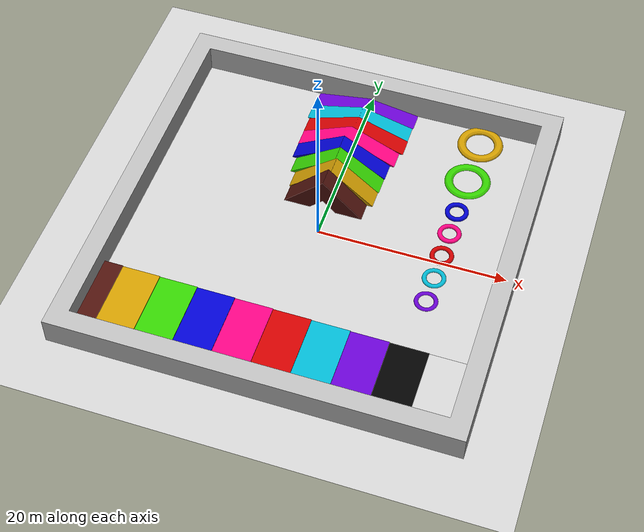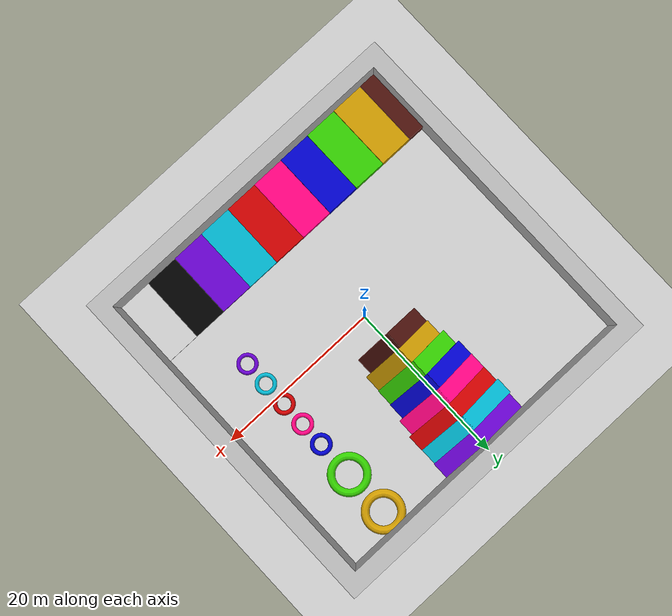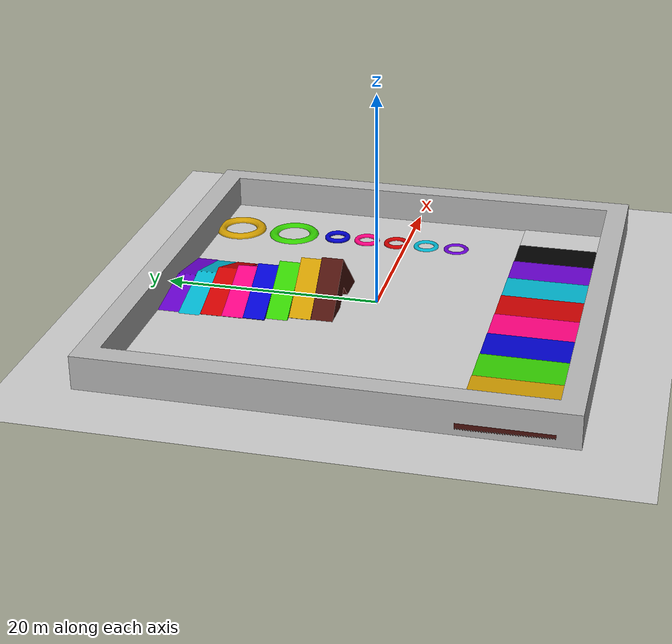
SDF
<sdf version="1.6">
 <world name="default">
  <light name="sun" type="directional">
   <pose>0 0 10 0 -0 0</pose>
   <diffuse>0.8 0.8 0.8 1</diffuse>
   <specular>0.1 0.1 0.1 1</specular>
   <attenuation>
    <range>1000</range>
    <constant>0.9</constant>
    <linear>0.01</linear>
    <quadratic>0.001</quadratic>
   </attenuation>
   <direction>-0.5 0.5 -1</direction>
  </light>
  <model name="ground_plane">
   <static>1</static>
   <link name="link">
    <collision name="collision">
     <geometry><plane><normal>0 0 1</normal><size>100 100</size></plane></geometry>
     <surface><friction><ode><mu>100</mu><mu2>50</mu2></ode></friction></surface>
    </collision>
    <visual name="visual">
     <cast_shadows>0</cast_shadows>
     <geometry><plane><normal>0 0 1</normal><size>100 100</size></plane></geometry>
     <material>
      <script><uri>file://media/materials/scripts/gazebo.material</uri><name>Gazebo/Grey</name></script>
     </material>
    </visual>
   </link>
  </model>
  <gravity>0 0 -9.8</gravity>
  <magnetic_field>6e-06 2.3e-05 -4.2e-05</magnetic_field>
  <atmosphere type="adiabatic"/>
  <physics name="default_physics" default="0" type="ode">
   <max_step_size>0.001</max_step_size>
   <real_time_factor>1</real_time_factor>
   <real_time_update_rate>1000</real_time_update_rate>
  </physics>
  <scene><ambient>0.4 0.4 0.4 1</ambient><background>0.7 0.7 0.7 1</background><shadows>1</shadows></scene>
  <spherical_coordinates>
   <surface_model>EARTH_WGS84</surface_model>
   <latitude_deg>0</latitude_deg>
   <longitude_deg>0</longitude_deg>
   <elevation>0</elevation>
   <heading_deg>0</heading_deg>
  </spherical_coordinates>
  <model name="roboskel_playground">
   <static>1</static>
   <link name="slope45">
    <collision name="collision">
     <pose>0 0 0.01 0 -0 0</pose>
     <geometry>
      <mesh><uri>model://roboskel_playground/meshes/slope45.dae</uri><scale>1 1 1</scale></mesh>
     </geometry>
     <surface>
      <friction><ode><mu>1</mu><mu2>1</mu2></ode></friction>
      <contact><ode><kp>1e+07</kp><kd>1</kd><min_depth>0.001</min_depth><max_vel>0.1</max_vel></ode></contact>
     </surface>
    </collision>
    <visual name="visual">
     <cast_shadows>0</cast_shadows>
     <pose>0 0 0.01 0 -0 0</pose>
     <geometry>
      <mesh><uri>model://roboskel_playground/meshes/slope45.dae</uri><scale>1 1 1</scale></mesh>
     </geometry>
     <material>
      <ambient>0.3 0.07 0.05 1</ambient>
      <diffuse>0.3 0.07 0.05 1</diffuse>
      <specular>0.1 0.1 0.1 1</specular>
      <emissive>0 0 0 0</emissive>
     </material>
    </visual>
   </link>
   <link name="slope40">
    <collision name="collision">
     <pose>0 0 0.01 0 -0 0</pose>
     <geometry>
      <mesh><uri>model://roboskel_playground/meshes/slope40.dae</uri><scale>1 1 1</scale></mesh>
     </geometry>
     <surface>
      <friction><ode><mu>1</mu><mu2>1</mu2></ode></friction>
      <contact><ode><kp>1e+07</kp><kd>1</kd><min_depth>0.001</min_depth><max_vel>0.1</max_vel></ode></contact>
     </surface>
    </collision>
    <visual name="visual">
     <cast_shadows>0</cast_shadows>
     <pose>0 0 0.01 0 -0 0</pose>
     <geometry>
      <mesh><uri>model://roboskel_playground/meshes/slope40.dae</uri><scale>1 1 1</scale></mesh>
     </geometry>
     <material>
      <ambient>0.8 0.6 0 1</ambient>
      <diffuse>0.8 0.6 0 1</diffuse>
      <specular>0.1 0.1 0.1 1</specular>
      <emissive>0 0 0 0</emissive>
     </material>
    </visual>
   </link>
   <link name="slope35">
    <collision name="collision">
     <pose>0 0 0.01 0 -0 0</pose>
     <geometry>
      <mesh><uri>model://roboskel_playground/meshes/slope35.dae</uri><scale>1 1 1</scale></mesh>
     </geometry>
     <surface>
      <friction><ode><mu>1</mu><mu2>1</mu2></ode></friction>
      <contact><ode><kp>1e+07</kp><kd>1</kd><min_depth>0.001</min_depth><max_vel>0.1</max_vel></ode></contact>
     </surface>
    </collision>
    <visual name="visual">
     <cast_shadows>0</cast_shadows>
     <pose>0 0 0.01 0 -0 0</pose>
     <geometry>
      <mesh><uri>model://roboskel_playground/meshes/slope35.dae</uri><scale>1 1 1</scale></mesh>
     </geometry>
     <material>
      <ambient>0.2 0.8 0 1</ambient>
      <diffuse>0.2 0.8 0 1</diffuse>
      <specular>0.1 0.1 0.1 1</specular>
      <emissive>0 0 0 0</emissive>
     </material>
    </visual>
   </link>
   <link name="slope30">
    <collision name="collision">
     <pose>0 0 0.01 0 -0 0</pose>
     <geometry>
      <mesh><uri>model://roboskel_playground/meshes/slope30.dae</uri><scale>1 1 1</scale></mesh>
     </geometry>
     <surface>
      <friction><ode><mu>1</mu><mu2>1</mu2></ode></friction>
      <contact><ode><kp>1e+07</kp><kd>1</kd><min_depth>0.001</min_depth><max_vel>0.1</max_vel></ode></contact>
     </surface>
    </collision>
    <visual name="visual">
     <cast_shadows>0</cast_shadows>
     <pose>0 0 0.01 0 -0 0</pose>
     <geometry>
      <mesh><uri>model://roboskel_playground/meshes/slope30.dae</uri><scale>1 1 1</scale></mesh>
     </geometry>
     <material>
      <ambient>0 0 0.8 1</ambient>
      <diffuse>0 0 0.8 1</diffuse>
      <specular>0.1 0.1 0.1 1</specular>
      <emissive>0 0 0 0</emissive>
     </material>
    </visual>
   </link>
   <link name="slope25">
    <collision name="collision">
     <pose>0 0 0.01 0 -0 0</pose>
     <geometry>
      <mesh><uri>model://roboskel_playground/meshes/slope25.dae</uri><scale>1 1 1</scale></mesh>
     </geometry>
     <surface>
      <friction><ode><mu>1</mu><mu2>1</mu2></ode></friction>
      <contact><ode><kp>1e+07</kp><kd>1</kd><min_depth>0.001</min_depth><max_vel>0.1</max_vel></ode></contact>
     </surface>
    </collision>
    <visual name="visual">
     <cast_shadows>0</cast_shadows>
     <pose>0 0 0.01 0 -0 0</pose>
     <geometry>
      <mesh><uri>model://roboskel_playground/meshes/slope25.dae</uri><scale>1 1 1</scale></mesh>
     </geometry>
     <material>
      <ambient>1 0 0.5 1</ambient>
      <diffuse>1 0 0.5 1</diffuse>
      <specular>0.1 0.1 0.1 1</specular>
      <emissive>0 0 0 0</emissive>
     </material>
    </visual>
   </link>
   <link name="slope20">
    <collision name="collision">
     <pose>0 0 0.01 0 -0 0</pose>
     <geometry>
      <mesh><uri>model://roboskel_playground/meshes/slope20.dae</uri><scale>1 1 1</scale></mesh>
     </geometry>
     <surface>
      <friction><ode><mu>1</mu><mu2>1</mu2></ode></friction>
      <contact><ode><kp>1e+07</kp><kd>1</kd><min_depth>0.001</min_depth><max_vel>0.1</max_vel></ode></contact>
     </surface>
    </collision>
    <visual name="visual">
     <cast_shadows>0</cast_shadows>
     <pose>0 0 0.01 0 -0 0</pose>
     <geometry>
      <mesh><uri>model://roboskel_playground/meshes/slope20.dae</uri><scale>1 1 1</scale></mesh>
     </geometry>
     <material>
      <ambient>0.8 0 0 1</ambient>
      <diffuse>0.8 0 0 1</diffuse>
      <specular>0.1 0.1 0.1 1</specular>
      <emissive>0 0 0 0</emissive>
     </material>
    </visual>
   </link>
   <link name="slope15">
    <collision name="collision">
     <pose>0 0 0.01 0 -0 0</pose>
     <geometry>
      <mesh><uri>model://roboskel_playground/meshes/slope15.dae</uri><scale>1 1 1</scale></mesh>
     </geometry>
     <surface>
      <friction><ode><mu>1</mu><mu2>1</mu2></ode></friction>
      <contact><ode><kp>1e+07</kp><kd>1</kd><min_depth>0.001</min_depth><max_vel>0.1</max_vel></ode></contact>
     </surface>
    </collision>
    <visual name="visual">
     <cast_shadows>0</cast_shadows>
     <pose>0 0 0.01 0 -0 0</pose>
     <geometry>
      <mesh><uri>model://roboskel_playground/meshes/slope15.dae</uri><scale>1 1 1</scale></mesh>
     </geometry>
     <material>
      <ambient>0 0.7 0.8 1</ambient>
      <diffuse>0 0.7 0.8 1</diffuse>
      <specular>0.1 0.1 0.1 1</specular>
      <emissive>0 0 0 0</emissive>
     </material>
    </visual>
   </link>
   <link name="slope10">
    <collision name="collision">
     <pose>0 0 0.01 0 -0 0</pose>
     <geometry>
      <mesh><uri>model://roboskel_playground/meshes/slope10.dae</uri><scale>1 1 1</scale></mesh>
     </geometry>
     <surface>
      <friction><ode><mu>1</mu><mu2>1</mu2></ode></friction>
      <contact><ode><kp>1e+07</kp><kd>1</kd><min_depth>0.001</min_depth><max_vel>0.1</max_vel></ode></contact>
     </surface>
    </collision>
    <visual name="visual">
     <cast_shadows>0</cast_shadows>
     <pose>0 0 0.01 0 -0 0</pose>
     <geometry>
      <mesh><uri>model://roboskel_playground/meshes/slope10.dae</uri><scale>1 1 1</scale></mesh>
     </geometry>
     <material>
      <ambient>0.4 0 0.8 1</ambient>
      <diffuse>0.4 0 0.8 1</diffuse>
      <specular>0.1 0.1 0.1 1</specular>
      <emissive>0 0 0 0</emissive>
     </material>
    </visual>
   </link>
   <link name="step10">
    <collision name="collision">
     <pose>0 0 0.01 0 -0 0</pose>
     <geometry><mesh><uri>model://roboskel_playground/meshes/step10.dae</uri><scale>1 1 1</scale></mesh></geometry>
     <surface>
      <friction><ode><mu>1</mu><mu2>1</mu2></ode></friction>
      <contact><ode><kp>1e+07</kp><kd>1</kd><min_depth>0.001</min_depth><max_vel>0.1</max_vel></ode></contact>
     </surface>
    </collision>
    <visual name="visual">
     <cast_shadows>0</cast_shadows>
     <pose>0 0 0.01 0 -0 0</pose>
     <geometry><mesh><uri>model://roboskel_playground/meshes/step10.dae</uri><scale>1 1 1</scale></mesh></geometry>
     <material>
      <ambient>0.3 0.07 0.05 1</ambient>
      <diffuse>0.3 0.07 0.05 1</diffuse>
      <specular>0.1 0.1 0.1 1</specular>
      <emissive>0 0 0 0</emissive>
     </material>
    </visual>
   </link>
   <link name="step9">
    <collision name="collision">
     <pose>0 0 0.01 0 -0 0</pose>
     <geometry><mesh><uri>model://roboskel_playground/meshes/step9.dae</uri><scale>1 1 1</scale></mesh></geometry>
     <surface>
      <friction><ode><mu>1</mu><mu2>1</mu2></ode></friction>
      <contact><ode><kp>1e+07</kp><kd>1</kd><min_depth>0.001</min_depth><max_vel>0.1</max_vel></ode></contact>
     </surface>
    </collision>
    <visual name="visual">
     <cast_shadows>0</cast_shadows>
     <pose>0 0 0.01 0 -0 0</pose>
     <geometry><mesh><uri>model://roboskel_playground/meshes/step9.dae</uri><scale>1 1 1</scale></mesh></geometry>
     <material>
      <ambient>0.8 0.6 0 1</ambient>
      <diffuse>0.8 0.6 0 1</diffuse>
      <specular>0.1 0.1 0.1 1</specular>
      <emissive>0 0 0 0</emissive>
     </material>
    </visual>
   </link>
   <link name="step8">
    <collision name="collision">
     <pose>0 0 0.01 0 -0 0</pose>
     <geometry><mesh><uri>model://roboskel_playground/meshes/step8.dae</uri><scale>1 1 1</scale></mesh></geometry>
     <surface>
      <friction><ode><mu>1</mu><mu2>1</mu2></ode></friction>
      <contact><ode><kp>1e+07</kp><kd>1</kd><min_depth>0.001</min_depth><max_vel>0.1</max_vel></ode></contact>
     </surface>
    </collision>
    <visual name="visual">
     <cast_shadows>0</cast_shadows>
     <pose>0 0 0.01 0 -0 0</pose>
     <geometry><mesh><uri>model://roboskel_playground/meshes/step8.dae</uri><scale>1 1 1</scale></mesh></geometry>
     <material>
      <ambient>0.2 0.8 0 1</ambient>
      <diffuse>0.2 0.8 0 1</diffuse>
      <specular>0.1 0.1 0.1 1</specular>
      <emissive>0 0 0 0</emissive>
     </material>
    </visual>
   </link>
   <link name="step7">
    <collision name="collision">
     <pose>0 0 0.01 0 -0 0</pose>
     <geometry><mesh><uri>model://roboskel_playground/meshes/step7.dae</uri><scale>1 1 1</scale></mesh></geometry>
     <surface>
      <friction><ode><mu>1</mu><mu2>1</mu2></ode></friction>
      <contact><ode><kp>1e+07</kp><kd>1</kd><min_depth>0.001</min_depth><max_vel>0.1</max_vel></ode></contact>
     </surface>
    </collision>
    <visual name="visual">
     <cast_shadows>0</cast_shadows>
     <pose>0 0 0.01 0 -0 0</pose>
     <geometry><mesh><uri>model://roboskel_playground/meshes/step7.dae</uri><scale>1 1 1</scale></mesh></geometry>
     <material>
      <ambient>0 0 0.8 1</ambient>
      <diffuse>0 0 0.8 1</diffuse>
      <specular>0.1 0.1 0.1 1</specular>
      <emissive>0 0 0 0</emissive>
     </material>
    </visual>
   </link>
   <link name="step6">
    <collision name="collision">
     <pose>0 0 0.01 0 -0 0</pose>
     <geometry><mesh><uri>model://roboskel_playground/meshes/step6.dae</uri><scale>1 1 1</scale></mesh></geometry>
     <surface>
      <friction><ode><mu>1</mu><mu2>1</mu2></ode></friction>
      <contact><ode><kp>1e+07</kp><kd>1</kd><min_depth>0.001</min_depth><max_vel>0.1</max_vel></ode></contact>
     </surface>
    </collision>
    <visual name="visual">
     <cast_shadows>0</cast_shadows>
     <pose>0 0 0.01 0 -0 0</pose>
     <geometry><mesh><uri>model://roboskel_playground/meshes/step6.dae</uri><scale>1 1 1</scale></mesh></geometry>
     <material>
      <ambient>1 0 0.5 1</ambient>
      <diffuse>1 0 0.5 1</diffuse>
      <specular>0.1 0.1 0.1 1</specular>
      <emissive>0 0 0 0</emissive>
     </material>
    </visual>
   </link>
   <link name="step5">
    <collision name="collision">
     <pose>0 0 0.01 0 -0 0</pose>
     <geometry><mesh><uri>model://roboskel_playground/meshes/step5.dae</uri><scale>1 1 1</scale></mesh></geometry>
     <surface>
      <friction><ode><mu>1</mu><mu2>1</mu2></ode></friction>
      <contact><ode><kp>1e+07</kp><kd>1</kd><min_depth>0.001</min_depth><max_vel>0.1</max_vel></ode></contact>
     </surface>
    </collision>
    <visual name="visual">
     <cast_shadows>0</cast_shadows>
     <pose>0 0 0.01 0 -0 0</pose>
     <geometry><mesh><uri>model://roboskel_playground/meshes/step5.dae</uri><scale>1 1 1</scale></mesh></geometry>
     <material>
      <ambient>0.8 0 0 1</ambient>
      <diffuse>0.8 0 0 1</diffuse>
      <specular>0.1 0.1 0.1 1</specular>
      <emissive>0 0 0 0</emissive>
     </material>
    </visual>
   </link>
   <link name="step4">
    <collision name="collision">
     <pose>0 0 0.01 0 -0 0</pose>
     <geometry><mesh><uri>model://roboskel_playground/meshes/step4.dae</uri><scale>1 1 1</scale></mesh></geometry>
     <surface>
      <friction><ode><mu>1</mu><mu2>1</mu2></ode></friction>
      <contact><ode><kp>1e+07</kp><kd>1</kd><min_depth>0.001</min_depth><max_vel>0.1</max_vel></ode></contact>
     </surface>
    </collision>
    <visual name="visual">
     <cast_shadows>0</cast_shadows>
     <pose>0 0 0.01 0 -0 0</pose>
     <geometry><mesh><uri>model://roboskel_playground/meshes/step4.dae</uri><scale>1 1 1</scale></mesh></geometry>
     <material>
      <ambient>0 0.7 0.8 1</ambient>
      <diffuse>0 0.7 0.8 1</diffuse>
      <specular>0.1 0.1 0.1 1</specular>
      <emissive>0 0 0 0</emissive>
     </material>
    </visual>
   </link>
   <link name="step3">
    <collision name="collision">
     <pose>0 0 0.01 0 -0 0</pose>
     <geometry><mesh><uri>model://roboskel_playground/meshes/step3.dae</uri><scale>1 1 1</scale></mesh></geometry>
     <surface>
      <friction><ode><mu>1</mu><mu2>1</mu2></ode></friction>
      <contact><ode><kp>1e+07</kp><kd>1</kd><min_depth>0.001</min_depth><max_vel>0.1</max_vel></ode></contact>
     </surface>
    </collision>
    <visual name="visual">
     <cast_shadows>0</cast_shadows>
     <pose>0 0 0.01 0 -0 0</pose>
     <geometry><mesh><uri>model://roboskel_playground/meshes/step3.dae</uri><scale>1 1 1</scale></mesh></geometry>
     <material>
      <ambient>0.4 0 0.8 1</ambient>
      <diffuse>0.4 0 0.8 1</diffuse>
      <specular>0.1 0.1 0.1 1</specular>
      <emissive>0 0 0 0</emissive>
     </material>
    </visual>
   </link>
   <link name="step2">
    <collision name="collision">
     <pose>0 0 0.01 0 -0 0</pose>
     <geometry><mesh><uri>model://roboskel_playground/meshes/step2.dae</uri><scale>1 1 1</scale></mesh></geometry>
     <surface>
      <friction><ode><mu>1</mu><mu2>1</mu2></ode></friction>
      <contact><ode><kp>1e+07</kp><kd>1</kd><min_depth>0.001</min_depth><max_vel>0.1</max_vel></ode></contact>
     </surface>
    </collision>
    <visual name="visual">
     <cast_shadows>0</cast_shadows>
     <pose>0 0 0.01 0 -0 0</pose>
     <geometry><mesh><uri>model://roboskel_playground/meshes/step2.dae</uri><scale>1 1 1</scale></mesh></geometry>
     <material>
      <ambient>0 0 0 1</ambient>
      <diffuse>0 0 0 1</diffuse>
      <specular>0.1 0.1 0.1 1</specular>
      <emissive>0 0 0 0</emissive>
     </material>
    </visual>
   </link>
   <link name="step1">
    <collision name="collision">
     <pose>0 0 0.01 0 -0 0</pose>
     <geometry><mesh><uri>model://roboskel_playground/meshes/step1.dae</uri><scale>1 1 1</scale></mesh></geometry>
     <surface>
      <friction><ode><mu>1</mu><mu2>1</mu2></ode></friction>
      <contact><ode><kp>1e+07</kp><kd>1</kd><min_depth>0.001</min_depth><max_vel>0.1</max_vel></ode></contact>
     </surface>
    </collision>
    <visual name="visual">
     <cast_shadows>0</cast_shadows>
     <pose>0 0 0.01 0 -0 0</pose>
     <geometry><mesh><uri>model://roboskel_playground/meshes/step1.dae</uri><scale>1 1 1</scale></mesh></geometry>
     <material>
      <ambient>0.8 0.8 0.8 1</ambient>
      <diffuse>0.8 0.8 0.8 1</diffuse>
      <specular>0.1 0.1 0.1 1</specular>
      <emissive>0 0 0 0</emissive>
     </material>
    </visual>
   </link>
   <link name="small_ring1">
    <collision name="collision">
     <pose>0 0 0.01 0 -0 0</pose>
     <geometry>
      <mesh><uri>model://roboskel_playground/meshes/small_ring1.dae</uri><scale>1 1 1</scale></mesh>
     </geometry>
     <surface>
      <friction><ode><mu>1</mu><mu2>1</mu2></ode></friction>
      <contact><ode><kp>1e+07</kp><kd>1</kd><min_depth>0.001</min_depth><max_vel>0.1</max_vel></ode></contact>
     </surface>
    </collision>
    <visual name="visual">
     <cast_shadows>0</cast_shadows>
     <pose>0 0 0.01 0 -0 0</pose>
     <geometry>
      <mesh><uri>model://roboskel_playground/meshes/small_ring1.dae</uri><scale>1 1 1</scale></mesh>
     </geometry>
     <material>
      <ambient>0.4 0 0.8 1</ambient>
      <diffuse>0.4 0 0.8 1</diffuse>
      <specular>0.1 0.1 0.1 1</specular>
      <emissive>0 0 0 0</emissive>
     </material>
    </visual>
   </link>
   <link name="small_ring2">
    <collision name="collision">
     <pose>0 0 0.01 0 -0 0</pose>
     <geometry>
      <mesh><uri>model://roboskel_playground/meshes/small_ring2.dae</uri><scale>1 1 1</scale></mesh>
     </geometry>
     <surface>
      <friction><ode><mu>1</mu><mu2>1</mu2></ode></friction>
      <contact><ode><kp>1e+07</kp><kd>1</kd><min_depth>0.001</min_depth><max_vel>0.1</max_vel></ode></contact>
     </surface>
    </collision>
    <visual name="visual">
     <cast_shadows>0</cast_shadows>
     <pose>0 0 0.01 0 -0 0</pose>
     <geometry>
      <mesh><uri>model://roboskel_playground/meshes/small_ring2.dae</uri><scale>1 1 1</scale></mesh>
     </geometry>
     <material>
      <ambient>0 0.7 0.8 1</ambient>
      <diffuse>0 0.7 0.8 1</diffuse>
      <specular>0.1 0.1 0.1 1</specular>
      <emissive>0 0 0 0</emissive>
     </material>
    </visual>
   </link>
   <link name="small_ring3">
    <collision name="collision">
     <pose>0 0 0.01 0 -0 0</pose>
     <geometry>
      <mesh><uri>model://roboskel_playground/meshes/small_ring3.dae</uri><scale>1 1 1</scale></mesh>
     </geometry>
     <surface>
      <friction><ode><mu>1</mu><mu2>1</mu2></ode></friction>
      <contact><ode><kp>1e+07</kp><kd>1</kd><min_depth>0.001</min_depth><max_vel>0.1</max_vel></ode></contact>
     </surface>
    </collision>
    <visual name="visual">
     <cast_shadows>0</cast_shadows>
     <pose>0 0 0.01 0 -0 0</pose>
     <geometry>
      <mesh><uri>model://roboskel_playground/meshes/small_ring3.dae</uri><scale>1 1 1</scale></mesh>
     </geometry>
     <material>
      <ambient>0.8 0 0 1</ambient>
      <diffuse>0.8 0 0 1</diffuse>
      <specular>0.1 0.1 0.1 1</specular>
      <emissive>0 0 0 0</emissive>
     </material>
    </visual>
   </link>
   <link name="small_ring4">
    <collision name="collision">
     <pose>0 0 0.01 0 -0 0</pose>
     <geometry>
      <mesh><uri>model://roboskel_playground/meshes/small_ring4.dae</uri><scale>1 1 1</scale></mesh>
     </geometry>
     <surface>
      <friction><ode><mu>1</mu><mu2>1</mu2></ode></friction>
      <contact><ode><kp>1e+07</kp><kd>1</kd><min_depth>0.001</min_depth><max_vel>0.1</max_vel></ode></contact>
     </surface>
    </collision>
    <visual name="visual">
     <cast_shadows>0</cast_shadows>
     <pose>0 0 0.01 0 -0 0</pose>
     <geometry>
      <mesh><uri>model://roboskel_playground/meshes/small_ring4.dae</uri><scale>1 1 1</scale></mesh>
     </geometry>
     <material>
      <ambient>1 0 0.5 1</ambient>
      <diffuse>1 0 0.5 1</diffuse>
      <specular>0.1 0.1 0.1 1</specular>
      <emissive>0 0 0 0</emissive>
     </material>
    </visual>
   </link>
   <link name="small_ring5">
    <collision name="collision">
     <pose>0 0 0.01 0 -0 0</pose>
     <geometry>
      <mesh><uri>model://roboskel_playground/meshes/small_ring5.dae</uri><scale>1 1 1</scale></mesh>
     </geometry>
     <surface>
      <friction><ode><mu>1</mu><mu2>1</mu2></ode></friction>
      <contact><ode><kp>1e+07</kp><kd>1</kd><min_depth>0.001</min_depth><max_vel>0.1</max_vel></ode></contact>
     </surface>
    </collision>
    <visual name="visual">
     <cast_shadows>0</cast_shadows>
     <pose>0 0 0.01 0 -0 0</pose>
     <geometry>
      <mesh><uri>model://roboskel_playground/meshes/small_ring5.dae</uri><scale>1 1 1</scale></mesh>
     </geometry>
     <material>
      <ambient>0 0 0.8 1</ambient>
      <diffuse>0 0 0.8 1</diffuse>
      <specular>0.1 0.1 0.1 1</specular>
      <emissive>0 0 0 0</emissive>
     </material>
    </visual>
   </link>
   <link name="big_ring1">
    <collision name="collision">
     <pose>0 0 0.01 0 -0 0</pose>
     <geometry>
      <mesh><uri>model://roboskel_playground/meshes/big_ring1.dae</uri><scale>1 1 1</scale></mesh>
     </geometry>
     <surface>
      <friction><ode><mu>1</mu><mu2>1</mu2></ode></friction>
      <contact><ode><kp>1e+07</kp><kd>1</kd><min_depth>0.001</min_depth><max_vel>0.1</max_vel></ode></contact>
     </surface>
    </collision>
    <visual name="visual">
     <cast_shadows>0</cast_shadows>
     <pose>0 0 0.01 0 -0 0</pose>
     <geometry>
      <mesh><uri>model://roboskel_playground/meshes/big_ring1.dae</uri><scale>1 1 1</scale></mesh>
     </geometry>
     <material>
      <ambient>0.2 0.8 0 1</ambient>
      <diffuse>0.2 0.8 0 1</diffuse>
      <specular>0.1 0.1 0.1 1</specular>
      <emissive>0 0 0 0</emissive>
     </material>
    </visual>
   </link>
   <link name="big_ring2">
    <collision name="collision">
     <pose>0 0 0.01 0 -0 0</pose>
     <geometry>
      <mesh><uri>model://roboskel_playground/meshes/big_ring2.dae</uri><scale>1 1 1</scale></mesh>
     </geometry>
     <surface>
      <friction><ode><mu>1</mu><mu2>1</mu2></ode></friction>
      <contact><ode><kp>1e+07</kp><kd>1</kd><min_depth>0.001</min_depth><max_vel>0.1</max_vel></ode></contact>
     </surface>
    </collision>
    <visual name="visual">
     <cast_shadows>0</cast_shadows>
     <pose>0 0 0.01 0 -0 0</pose>
     <geometry>
      <mesh><uri>model://roboskel_playground/meshes/big_ring2.dae</uri><scale>1 1 1</scale></mesh>
     </geometry>
     <material>
      <ambient>0.8 0.6 0 1</ambient>
      <diffuse>0.8 0.6 0 1</diffuse>
      <specular>0.1 0.1 0.1 1</specular>
      <emissive>0 0 0 0</emissive>
     </material>
    </visual>
   </link>
   <link name="boundaries">
    <collision name="collision">
     <pose>0 0 0.01 0 -0 0</pose>
     <geometry>
      <mesh><uri>model://roboskel_playground/meshes/boundaries.dae</uri><scale>1 1 1</scale></mesh>
     </geometry>
     <surface>
      <friction><ode><mu>1</mu><mu2>1</mu2></ode></friction>
      <contact><ode><kp>1e+07</kp><kd>1</kd><min_depth>0.001</min_depth><max_vel>0.1</max_vel></ode></contact>
     </surface>
    </collision>
    <visual name="visual">
     <cast_shadows>0</cast_shadows>
     <pose>0 0 0.01 0 -0 0</pose>
     <geometry>
      <mesh><uri>model://roboskel_playground/meshes/boundaries.dae</uri><scale>1 1 1</scale></mesh>
     </geometry>
    </visual>
   </link>
   <link name="plane">
    <collision name="collision">
     <pose>0 0 0.01 0 -0 0</pose>
     <geometry><mesh><uri>model://roboskel_playground/meshes/plane.dae</uri><scale>1 1 1</scale></mesh></geometry>
     <surface>
      <friction><ode><mu>1</mu><mu2>1</mu2></ode></friction>
      <contact><ode><kp>1e+07</kp><kd>1</kd><min_depth>0.001</min_depth><max_vel>0.1</max_vel></ode></contact>
     </surface>
    </collision>
    <visual name="visual">
     <cast_shadows>0</cast_shadows>
     <pose>0 0 0.01 0 -0 0</pose>
     <geometry><mesh><uri>model://roboskel_playground/meshes/plane.dae</uri><scale>1 1 1</scale></mesh></geometry>
     <material>
      <ambient>0.8 0.8 0.8 1</ambient>
      <diffuse>0.8 0.8 0.8 1</diffuse>
      <specular>0.1 0.1 0.1 1</specular>
      <emissive>0 0 0 0</emissive>
     </material>
    </visual>
   </link>
  </model>
 </world>
</sdf>
